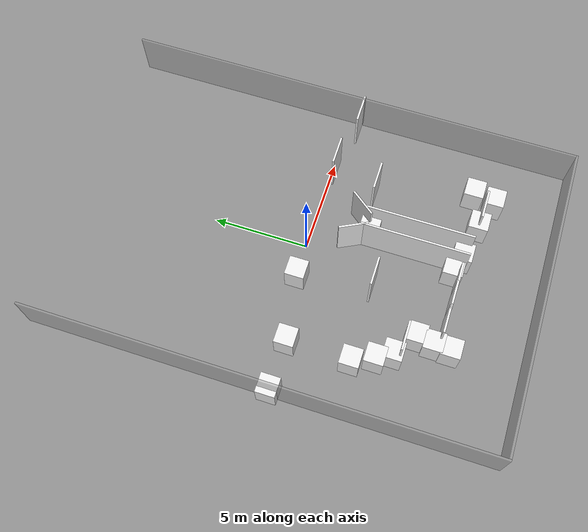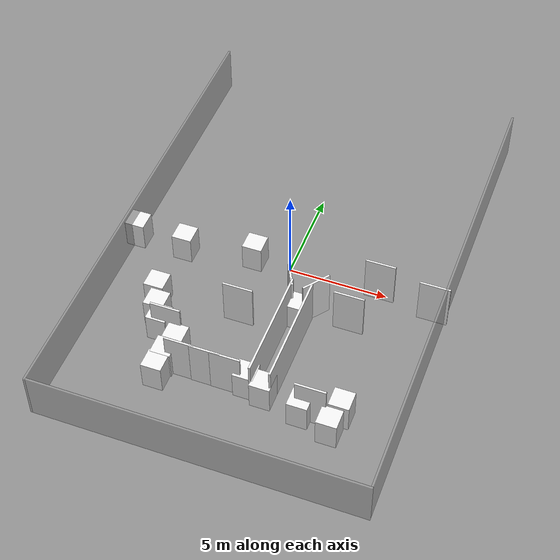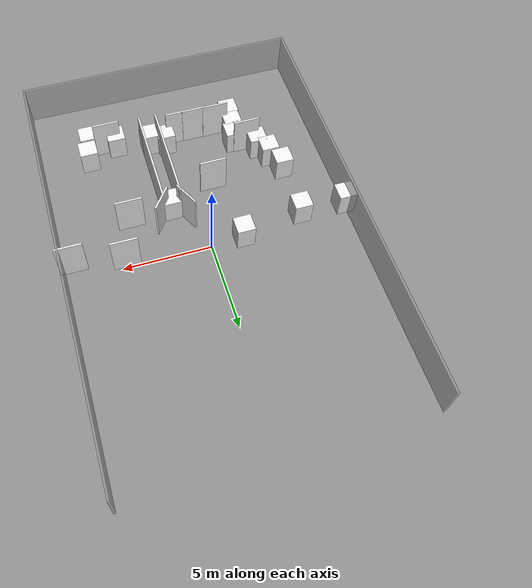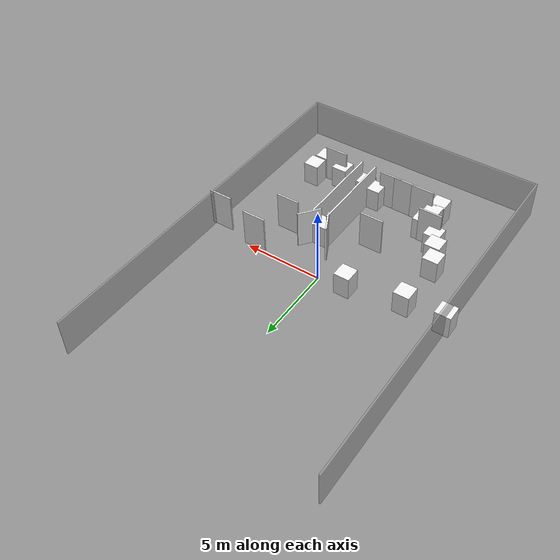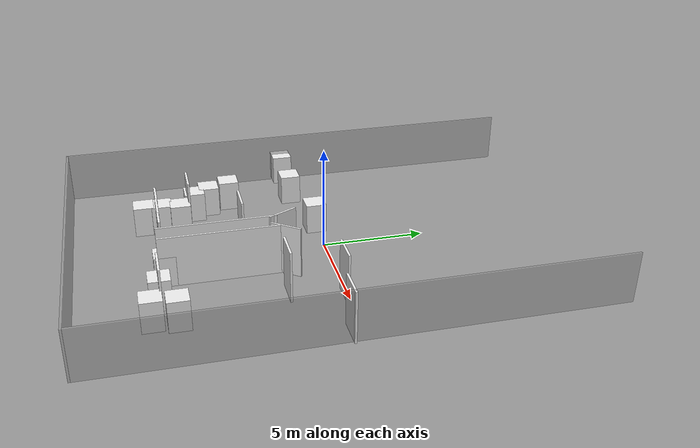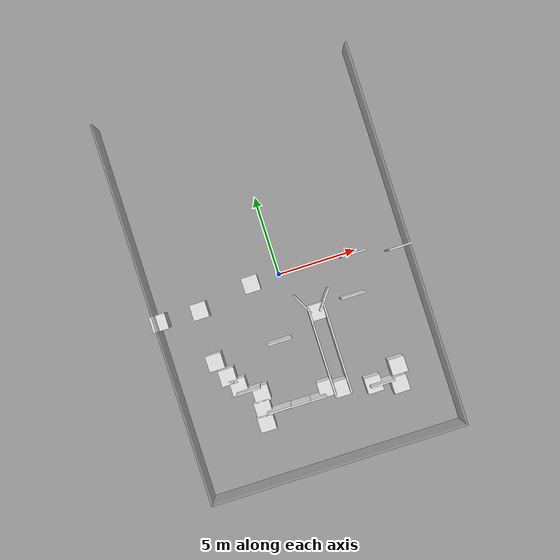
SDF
<sdf version="1.6">
 <world name="default">
  <model name="box_1">
   <pose>0.05 -12.05 1.25 0 -0 0</pose>
   <static>1</static>
   <link name="link">
    <collision name="collision"><geometry><box><size>16.1 0.1 2.5</size></box></geometry></collision>
    <visual name="visual">
     <geometry><box><size>16.1 0.1 2.5</size></box></geometry>
     <material>
      <script><name>Gazebo/GreyTransparent</name><uri>file://media/materials/scripts/gazebo.material</uri></script>
     </material>
    </visual>
   </link>
  </model>
  <model name="box_2">
   <pose>8.05 0.05 1.25 0 -0 0</pose>
   <static>1</static>
   <link name="link">
    <collision name="collision"><geometry><box><size>0.1 24.1 2.5</size></box></geometry></collision>
    <visual name="visual">
     <geometry><box><size>0.1 24.1 2.5</size></box></geometry>
     <material>
      <script><name>Gazebo/GreyTransparent</name><uri>file://media/materials/scripts/gazebo.material</uri></script>
     </material>
    </visual>
   </link>
  </model>
  <model name="box_4">
   <pose>-8.05 -0.05 1.25 0 -0 0</pose>
   <static>1</static>
   <link name="link">
    <collision name="collision"><geometry><box><size>0.1 24.1 2.5</size></box></geometry></collision>
    <visual name="visual">
     <geometry><box><size>0.1 24.1 2.5</size></box></geometry>
     <material>
      <script><name>Gazebo/GreyTransparent</name><uri>file://media/materials/scripts/gazebo.material</uri></script>
     </material>
    </visual>
   </link>
  </model>
  <model name="box_8_clone">
   <pose>7.48667 -0.628309 1.25 0 -0 0</pose>
   <static>1</static>
   <link name="link">
    <collision name="collision"><geometry><box><size>1.5 0.1 2.5</size></box></geometry></collision>
    <visual name="visual">
     <geometry><box><size>1.5 0.1 2.5</size></box></geometry>
     <material>
      <script><name>Gazebo/White</name><uri>file://media/materials/scripts/gazebo.material</uri></script>
     </material>
    </visual>
   </link>
  </model>
  <model name="box_9_clone_clone_0">
   <pose>-3.46298 -8.44795 0.75 0 -0 0</pose>
   <static>1</static>
   <link name="link">
    <collision name="collision"><geometry><box><size>1 1 1.5</size></box></geometry></collision>
    <visual name="visual">
     <geometry><box><size>1 1 1.5</size></box></geometry>
     <material>
      <script><name>Gazebo/White</name><uri>file://media/materials/scripts/gazebo.material</uri></script>
     </material>
    </visual>
   </link>
  </model>
  <model name="box_9_clone_clone_1">
   <pose>-3.40186 -7.56359 0.75 0 -0 0</pose>
   <static>1</static>
   <link name="link">
    <collision name="collision"><geometry><box><size>1 1 1.5</size></box></geometry></collision>
    <visual name="visual">
     <geometry><box><size>1 1 1.5</size></box></geometry>
     <material>
      <script><name>Gazebo/White</name><uri>file://media/materials/scripts/gazebo.material</uri></script>
     </material>
    </visual>
   </link>
  </model>
  <model name="box_9_clone_clone_2">
   <pose>-3.23885 -6.64819 0.75 0 -0 0</pose>
   <static>1</static>
   <link name="link">
    <collision name="collision"><geometry><box><size>1 1 1.5</size></box></geometry></collision>
    <visual name="visual">
     <geometry><box><size>1 1 1.5</size></box></geometry>
     <material>
      <script><name>Gazebo/White</name><uri>file://media/materials/scripts/gazebo.material</uri></script>
     </material>
    </visual>
   </link>
  </model>
  <model name="box_9_clone_clone_3">
   <pose>5.04068 -8.64867 0.75 0 -0 0</pose>
   <static>1</static>
   <link name="link">
    <collision name="collision"><geometry><box><size>1 1 1.5</size></box></geometry></collision>
    <visual name="visual">
     <geometry><box><size>1 1 1.5</size></box></geometry>
     <material>
      <script><name>Gazebo/White</name><uri>file://media/materials/scripts/gazebo.material</uri></script>
     </material>
    </visual>
   </link>
  </model>
  <model name="box_9_clone_clone_4">
   <pose>5.24363 -7.53941 0.75 0 -0 0</pose>
   <static>1</static>
   <link name="link">
    <collision name="collision"><geometry><box><size>1 1 1.5</size></box></geometry></collision>
    <visual name="visual">
     <geometry><box><size>1 1 1.5</size></box></geometry>
     <material>
      <script><name>Gazebo/White</name><uri>file://media/materials/scripts/gazebo.material</uri></script>
     </material>
    </visual>
   </link>
  </model>
  <model name="box_8_clone_clone_13_clone_clone_clone_clone_0">
   <pose>3.88443 -2.57138 1.25 0 -0 0</pose>
   <static>1</static>
   <link name="link">
    <collision name="collision"><geometry><box><size>1.5 0.1 2.5</size></box></geometry></collision>
    <visual name="visual">
     <geometry><box><size>1.5 0.1 2.5</size></box></geometry>
     <material>
      <script><name>Gazebo/White</name><uri>file://media/materials/scripts/gazebo.material</uri></script>
     </material>
    </visual>
   </link>
  </model>
  <model name="box_8_clone_clone_11_clone">
   <pose>-1.1954 -3.87817 1.25 0 -0 0</pose>
   <static>1</static>
   <link name="link">
    <collision name="collision"><geometry><box><size>1.5 0.1 2.5</size></box></geometry></collision>
    <visual name="visual">
     <geometry><box><size>1.5 0.1 2.5</size></box></geometry>
     <material>
      <script><name>Gazebo/White</name><uri>file://media/materials/scripts/gazebo.material</uri></script>
     </material>
    </visual>
   </link>
  </model>
  <model name="box_9_clone_clone_7_clone_clone">
   <pose>-7.89766 -0.627489 0.75 0 -0 0</pose>
   <static>1</static>
   <link name="link">
    <collision name="collision"><geometry><box><size>1 1 1.5</size></box></geometry></collision>
    <visual name="visual">
     <geometry><box><size>1 1 1.5</size></box></geometry>
     <material>
      <script><name>Gazebo/White</name><uri>file://media/materials/scripts/gazebo.material</uri></script>
     </material>
    </visual>
   </link>
  </model>
  <model name="box_9_clone_clone_7_clone_clone_3">
   <pose>-5.3619 -3.95424 0.75 0 -0 0</pose>
   <static>1</static>
   <link name="link">
    <collision name="collision"><geometry><box><size>1 1 1.5</size></box></geometry></collision>
    <visual name="visual">
     <geometry><box><size>1 1 1.5</size></box></geometry>
     <material>
      <script><name>Gazebo/White</name><uri>file://media/materials/scripts/gazebo.material</uri></script>
     </material>
    </visual>
   </link>
  </model>
  <model name="box_9_clone_clone_7_clone_clone_4">
   <pose>-4.89443 -5.04481 0.75 0 -0 0</pose>
   <static>1</static>
   <link name="link">
    <collision name="collision"><geometry><box><size>1 1 1.5</size></box></geometry></collision>
    <visual name="visual">
     <geometry><box><size>1 1 1.5</size></box></geometry>
     <material>
      <script><name>Gazebo/White</name><uri>file://media/materials/scripts/gazebo.material</uri></script>
     </material>
    </visual>
   </link>
  </model>
  <model name="box_9_clone_clone_7_clone_clone_5">
   <pose>-4.42171 -5.82067 0.75 0 -0 0</pose>
   <static>1</static>
   <link name="link">
    <collision name="collision"><geometry><box><size>1 1 1.5</size></box></geometry></collision>
    <visual name="visual">
     <geometry><box><size>1 1 1.5</size></box></geometry>
     <material>
      <script><name>Gazebo/White</name><uri>file://media/materials/scripts/gazebo.material</uri></script>
     </material>
    </visual>
   </link>
  </model>
  <model name="box_8_clone_clone_4_clone_2_clone">
   <pose>-3.89284 -6.16269 1.25 0 -0 0</pose>
   <static>1</static>
   <link name="link">
    <collision name="collision"><geometry><box><size>1.5 0.1 2.5</size></box></geometry></collision>
    <visual name="visual">
     <geometry><box><size>1.5 0.1 2.5</size></box></geometry>
     <material>
      <script><name>Gazebo/White</name><uri>file://media/materials/scripts/gazebo.material</uri></script>
     </material>
    </visual>
   </link>
  </model>
  <model name="box_8_clone_clone_4_clone_0_clone">
   <pose>3.96979 -8.18121 1.25 0 -0 0</pose>
   <static>1</static>
   <link name="link">
    <collision name="collision"><geometry><box><size>1.5 0.1 2.5</size></box></geometry></collision>
    <visual name="visual">
     <geometry><box><size>1.5 0.1 2.5</size></box></geometry>
     <material>
      <script><name>Gazebo/White</name><uri>file://media/materials/scripts/gazebo.material</uri></script>
     </material>
    </visual>
   </link>
  </model>
  <model name="box_8_clone_clone_4_clone_0_clone_0">
   <pose>-2.46431 -7.82356 1.25 0 -0 0</pose>
   <static>1</static>
   <link name="link">
    <collision name="collision"><geometry><box><size>1.5 0.1 2.5</size></box></geometry></collision>
    <visual name="visual">
     <geometry><box><size>1.5 0.1 2.5</size></box></geometry>
     <material>
      <script><name>Gazebo/White</name><uri>file://media/materials/scripts/gazebo.material</uri></script>
     </material>
    </visual>
   </link>
  </model>
  <model name="box_8_clone_clone_4_clone_0_clone_1">
   <pose>-1.22633 -7.84729 1.25 0 -0 0</pose>
   <static>1</static>
   <link name="link">
    <collision name="collision"><geometry><box><size>1.5 0.1 2.5</size></box></geometry></collision>
    <visual name="visual">
     <geometry><box><size>1.5 0.1 2.5</size></box></geometry>
     <material>
      <script><name>Gazebo/White</name><uri>file://media/materials/scripts/gazebo.material</uri></script>
     </material>
    </visual>
   </link>
  </model>
  <model name="box_8_clone_clone_4_clone_0_clone_2">
   <pose>-0.238809 -7.86091 1.25 0 -0 0</pose>
   <static>1</static>
   <link name="link">
    <collision name="collision"><geometry><box><size>1.5 0.1 2.5</size></box></geometry></collision>
    <visual name="visual">
     <geometry><box><size>1.5 0.1 2.5</size></box></geometry>
     <material>
      <script><name>Gazebo/White</name><uri>file://media/materials/scripts/gazebo.material</uri></script>
     </material>
    </visual>
   </link>
  </model>
  <model name="box_9_clone_clone_5_clone_2_clone_0_clone">
   <pose>0.652057 -7.5435 0.75 0 -0 0</pose>
   <static>1</static>
   <link name="link">
    <collision name="collision"><geometry><box><size>1 1 1.5</size></box></geometry></collision>
    <visual name="visual">
     <geometry><box><size>1 1 1.5</size></box></geometry>
     <material>
      <script><name>Gazebo/White</name><uri>file://media/materials/scripts/gazebo.material</uri></script>
     </material>
    </visual>
   </link>
  </model>
  <model name="box_9_clone_clone_5_clone_2_clone_0_clone_0">
   <pose>3.49636 -8.18539 0.75 0 -0 0</pose>
   <static>1</static>
   <link name="link">
    <collision name="collision"><geometry><box><size>1 1 1.5</size></box></geometry></collision>
    <visual name="visual">
     <geometry><box><size>1 1 1.5</size></box></geometry>
     <material>
      <script><name>Gazebo/White</name><uri>file://media/materials/scripts/gazebo.material</uri></script>
     </material>
    </visual>
   </link>
  </model>
  <model name="box_9_clone_clone_7_clone_clone_clone">
   <pose>-5.32159 -0.673379 0.75 0 -0 0</pose>
   <static>1</static>
   <link name="link">
    <collision name="collision"><geometry><box><size>1 1 1.5</size></box></geometry></collision>
    <visual name="visual">
     <geometry><box><size>1 1 1.5</size></box></geometry>
     <material>
      <script><name>Gazebo/White</name><uri>file://media/materials/scripts/gazebo.material</uri></script>
     </material>
    </visual>
   </link>
  </model>
  <model name="box_6_clone_clone_3_clone_clone_clone_clone_0">
   <pose>2.0182 -5.31678 1.25 0 -0 0</pose>
   <static>1</static>
   <link name="link">
    <collision name="collision"><geometry><box><size>0.1 5.60332 2.5</size></box></geometry></collision>
    <visual name="visual">
     <geometry><box><size>0.1 5.60332 2.5</size></box></geometry>
     <material>
      <script><name>Gazebo/White</name><uri>file://media/materials/scripts/gazebo.material</uri></script>
     </material>
    </visual>
   </link>
  </model>
  <model name="box_6_clone_clone_3_clone_clone_clone_clone_0_clone">
   <pose>1.04356 -5.29976 1.25 0 -0 0</pose>
   <static>1</static>
   <link name="link">
    <collision name="collision"><geometry><box><size>0.1 5.60332 2.5</size></box></geometry></collision>
    <visual name="visual">
     <geometry><box><size>0.1 5.60332 2.5</size></box></geometry>
     <material>
      <script><name>Gazebo/White</name><uri>file://media/materials/scripts/gazebo.material</uri></script>
     </material>
    </visual>
   </link>
  </model>
  <model name="box_9_clone_clone_5_clone_2_clone_0_clone_clone">
   <pose>1.51029 -2.90303 0.75 0 -0 0</pose>
   <static>1</static>
   <link name="link">
    <collision name="collision"><geometry><box><size>1 1 1.5</size></box></geometry></collision>
    <visual name="visual">
     <geometry><box><size>1 1 1.5</size></box></geometry>
     <material>
      <script><name>Gazebo/White</name><uri>file://media/materials/scripts/gazebo.material</uri></script>
     </material>
    </visual>
   </link>
  </model>
  <model name="box_8_clone_clone">
   <pose>4.67136 -0.169302 1.25 0 -0 0</pose>
   <static>1</static>
   <link name="link">
    <collision name="collision"><geometry><box><size>1.5 0.1 2.5</size></box></geometry></collision>
    <visual name="visual">
     <geometry><box><size>1.5 0.1 2.5</size></box></geometry>
     <material>
      <script><name>Gazebo/White</name><uri>file://media/materials/scripts/gazebo.material</uri></script>
     </material>
    </visual>
   </link>
  </model>
  <model name="box_8_clone_clone_3_clone_0_clone">
   <pose>0.807662 -2.18044 1.25 0 0 -1.10314</pose>
   <static>1</static>
   <link name="link">
    <collision name="collision"><geometry><box><size>1.5 0.1 2.5</size></box></geometry></collision>
    <visual name="visual">
     <geometry><box><size>1.5 0.1 2.5</size></box></geometry>
     <material>
      <script><name>Gazebo/White</name><uri>file://media/materials/scripts/gazebo.material</uri></script>
     </material>
    </visual>
   </link>
  </model>
  <model name="box_8_clone_clone_3_clone_1_clone">
   <pose>2.14376 -2.28563 1.25 0 -0 0.915539</pose>
   <static>1</static>
   <link name="link">
    <collision name="collision"><geometry><box><size>1.5 0.1 2.5</size></box></geometry></collision>
    <visual name="visual">
     <geometry><box><size>1.5 0.1 2.5</size></box></geometry>
     <material>
      <script><name>Gazebo/White</name><uri>file://media/materials/scripts/gazebo.material</uri></script>
     </material>
    </visual>
   </link>
  </model>
  <model name="box_9_clone_clone_7_clone_clone_0">
   <pose>-1.82358 -0.068042 0.75 0 -0 0</pose>
   <static>1</static>
   <link name="link">
    <collision name="collision"><geometry><box><size>1 1 1.5</size></box></geometry></collision>
    <visual name="visual">
     <geometry><box><size>1 1 1.5</size></box></geometry>
     <material>
      <script><name>Gazebo/White</name><uri>file://media/materials/scripts/gazebo.material</uri></script>
     </material>
    </visual>
   </link>
  </model>
  <model name="box_9_clone_clone_5_clone_2_clone_0_clone_0_clone">
   <pose>1.56966 -7.808 0.75 0 -0 0</pose>
   <static>1</static>
   <link name="link">
    <collision name="collision"><geometry><box><size>1 1 1.5</size></box></geometry></collision>
    <visual name="visual">
     <geometry><box><size>1 1 1.5</size></box></geometry>
     <material>
      <script><name>Gazebo/White</name><uri>file://media/materials/scripts/gazebo.material</uri></script>
     </material>
    </visual>
   </link>
  </model>
 </world>
</sdf>
